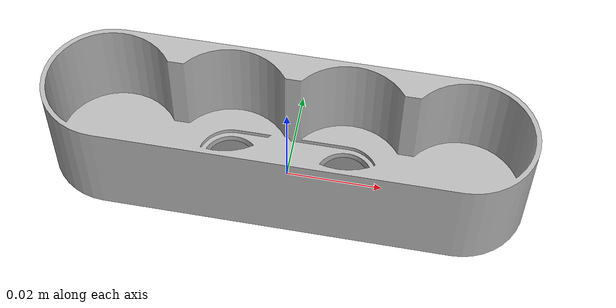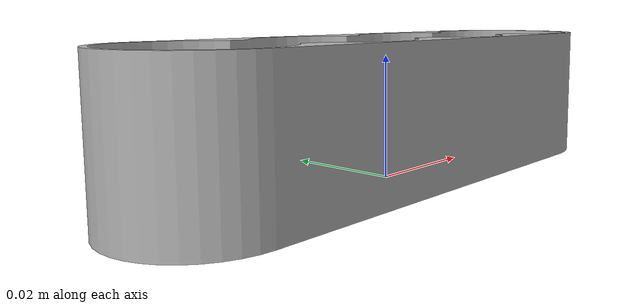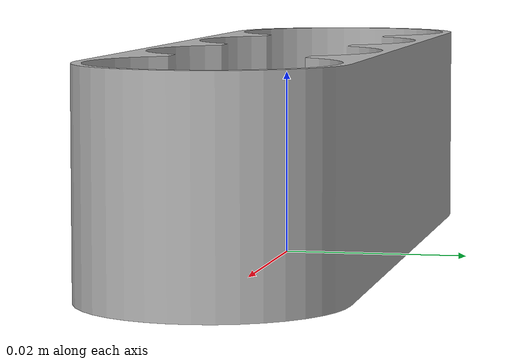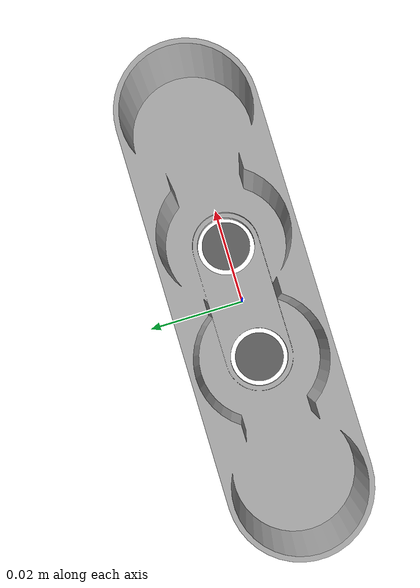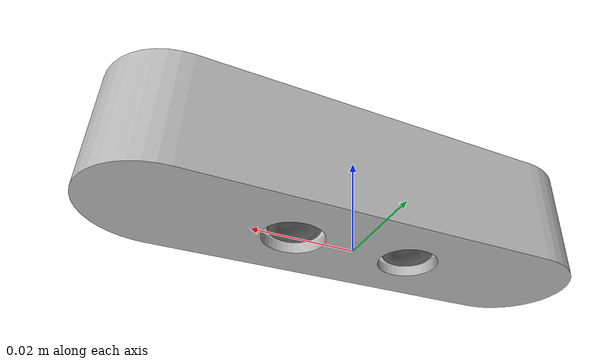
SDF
<?xml version="1.0" ?>
<sdf version="1.6">
  <model name="bottom_shell">
    <allow_auto_disable>true</allow_auto_disable>

    <link name="base_link">
      <inertial auto="true"/>

      <visual name="shell_visual">
        <geometry>
          <mesh>
            <uri>model://battery_module/meshes/visual/bottom_shell.glb</uri>
          </mesh>
        </geometry>
      </visual>

      <collision name="vg_4_collision">
        <density>20000</density>
        <geometry>
          <mesh>
            <uri>model://battery_module/meshes/collision/bottom_shell.stl</uri>
          </mesh>
        </geometry>
      </collision>

      <sensor name='contact_sensor' type='contact'>
        <update_rate>5</update_rate>
        <contact>
          <collision>vg_4_collision</collision>
        </contact>
      </sensor>

    </link>

    <link name="bead_1_link">
      <inertial auto="true"/>
      <visual name="bead_visual_1">
        <pose>-0.012 0 0.002 0 0 0</pose>
        <geometry>
          <mesh>
            <uri>model://battery_module/meshes/visual/weld_bead.stl</uri>
          </mesh>
        </geometry>
        <material>
          <diffuse>0.4 0.4 0.4 0.0</diffuse>
        </material>
      </visual>

      <collision name="bead_collision_1">
        <density>1</density>
        <pose>-0.012 0 0.0021 0 0 0</pose>
        <geometry>
          <cylinder>
            <radius>0.006</radius>
            <length>0.0002</length>
          </cylinder>
        </geometry>
      </collision>
    </link>

    <link name="bead_2_link">
      <inertial auto="true"/>
      <visual name="bead_visual_2">
        <pose>0.012 0 0.002 0 0 0</pose>
        <geometry>
          <mesh>
            <uri>model://battery_module/meshes/visual/weld_bead.stl</uri>
          </mesh>
        </geometry>
        <material>
          <diffuse>0.4 0.4 0.4 0.0</diffuse>
        </material>
      </visual>

      <collision name="bead_collision_2">
        <density>1</density>
        <pose>0.012 0 0.0021 0 0 0</pose>
        <geometry>
          <cylinder>
            <radius>0.006</radius>
            <length>0.0002</length>
          </cylinder>
        </geometry>
      </collision>
    </link>

    <joint name="bead_1_joint" type="fixed">
      <parent>base_link</parent>
      <child>bead_1_link</child>
    </joint>

    <joint name="bead_2_joint" type="fixed">
      <parent>base_link</parent>
      <child>bead_2_link</child>
    </joint>

    <link name="slot_1_link">
      <inertial auto="true"/>
      <pose> -0.036 0 0.005 0 0 0</pose>
      <collision name="collision">
        <density>1</density>
        <geometry>
          <cylinder>
            <radius>0.005</radius>
            <length>0.001</length>
          </cylinder>
        </geometry>
      </collision>
      <sensor name='collision_detector' type='contact'>
        <contact>
          <collision>collision</collision>
        </contact>
      </sensor>
    </link>

    <link name="slot_2_link">
      <inertial auto="true"/>
      <pose> -0.012 0 0.005 0 0 0</pose>
      <collision name="collision">
        <density>1</density>
        <geometry>
          <cylinder>
            <radius>0.005</radius>
            <length>0.001</length>
          </cylinder>
        </geometry>
      </collision>
      <sensor name='collision_detector' type='contact'>
        <contact>
          <collision>collision</collision>
        </contact>
      </sensor>
    </link>

    <link name="slot_3_link">
      <inertial auto="true"/>
      <pose> 0.012 0 0.005 0 0 0</pose>
      <collision name="collision">
        <density>1</density>
        <geometry>
          <cylinder>
            <radius>0.005</radius>
            <length>0.001</length>
          </cylinder>
        </geometry>
      </collision>
      <sensor name='collision_detector' type='contact'>
        <contact>
          <collision>collision</collision>
        </contact>
      </sensor>
    </link>

    <link name="slot_4_link">
      <inertial auto="true"/>
      <pose> 0.036 0 0.005 0 0 0</pose>
      <collision name="collision">
        <density>1</density>
        <geometry>
          <cylinder>
            <radius>0.005</radius>
            <length>0.001</length>
          </cylinder>
        </geometry>
      </collision>
      <sensor name='collision_detector' type='contact'>
        <contact>
          <collision>collision</collision>
        </contact>
      </sensor>
    </link>

    <joint name="slot_1_sensor_joint" type="fixed">
      <parent>base_link</parent>
      <child>slot_1_link</child>
    </joint>

    <joint name="slot_2_sensor_joint" type="fixed">
      <parent>base_link</parent>
      <child>slot_2_link</child>
    </joint>

    <joint name="slot_3_sensor_joint" type="fixed">
      <parent>base_link</parent>
      <child>slot_3_link</child>
    </joint>

    <joint name="slot_4_sensor_joint" type="fixed">
      <parent>base_link</parent>
      <child>slot_4_link</child>
    </joint>

    <plugin
      filename="libBottomShellPlugin.so"
      name="ariac_plugins::BottomShellPlugin">
    </plugin>
  </model>
</sdf>
